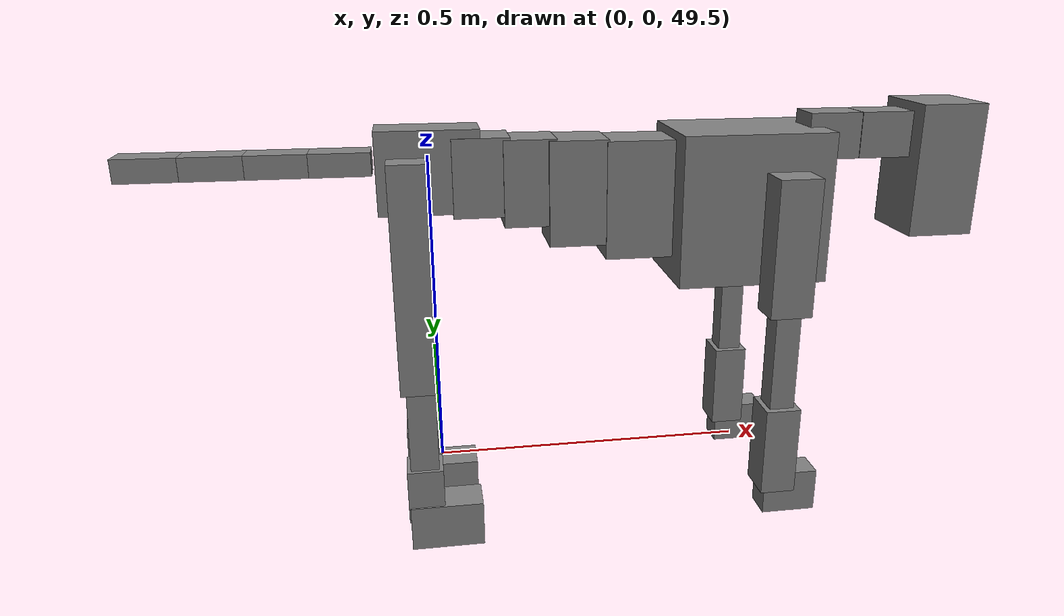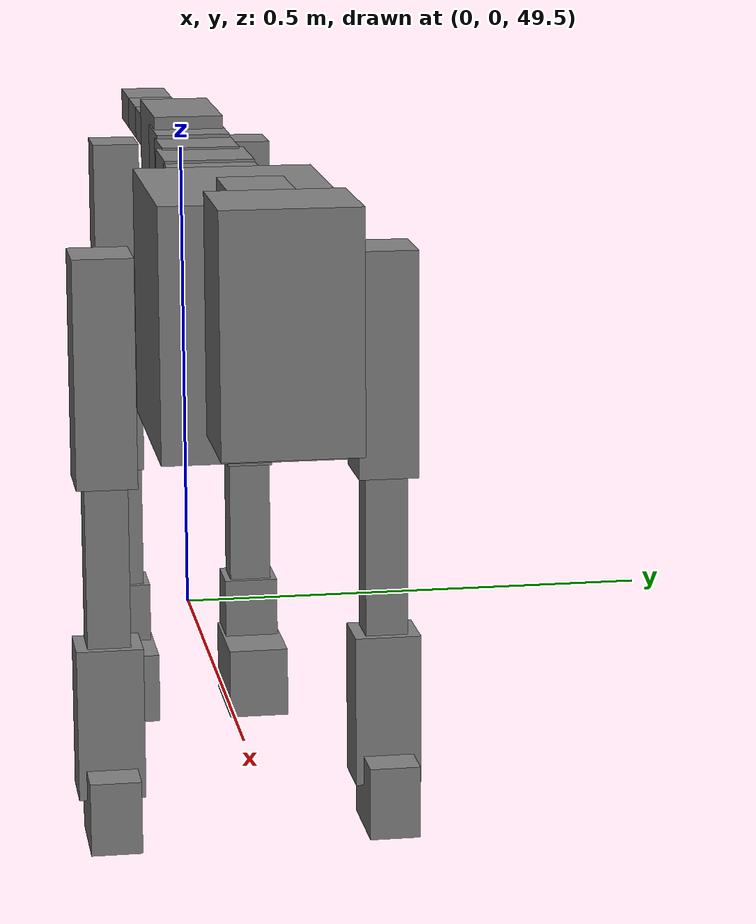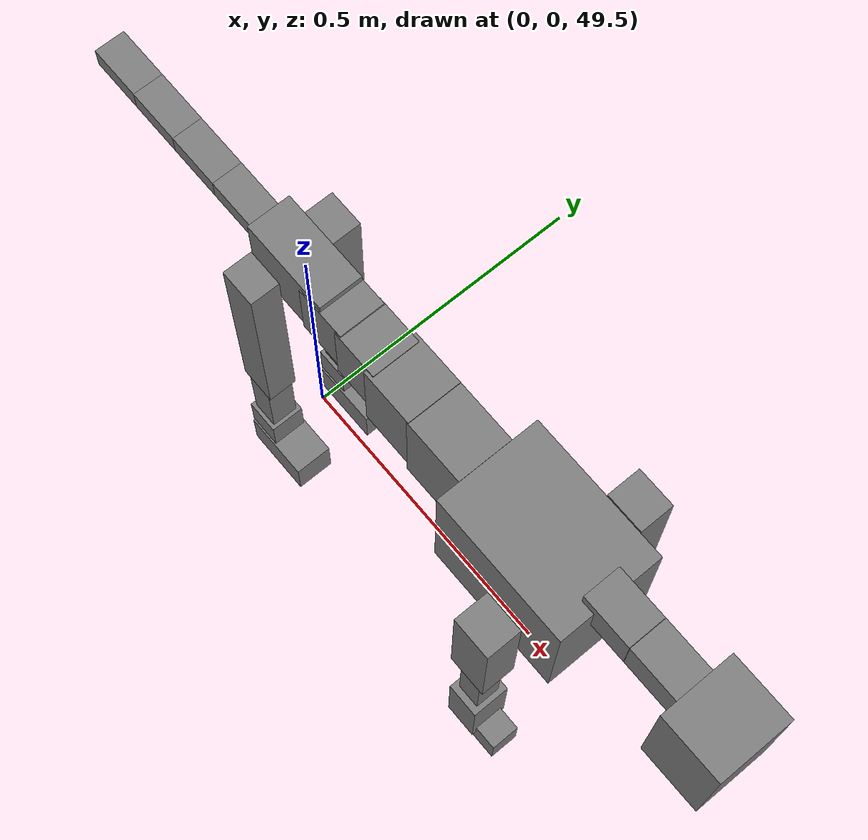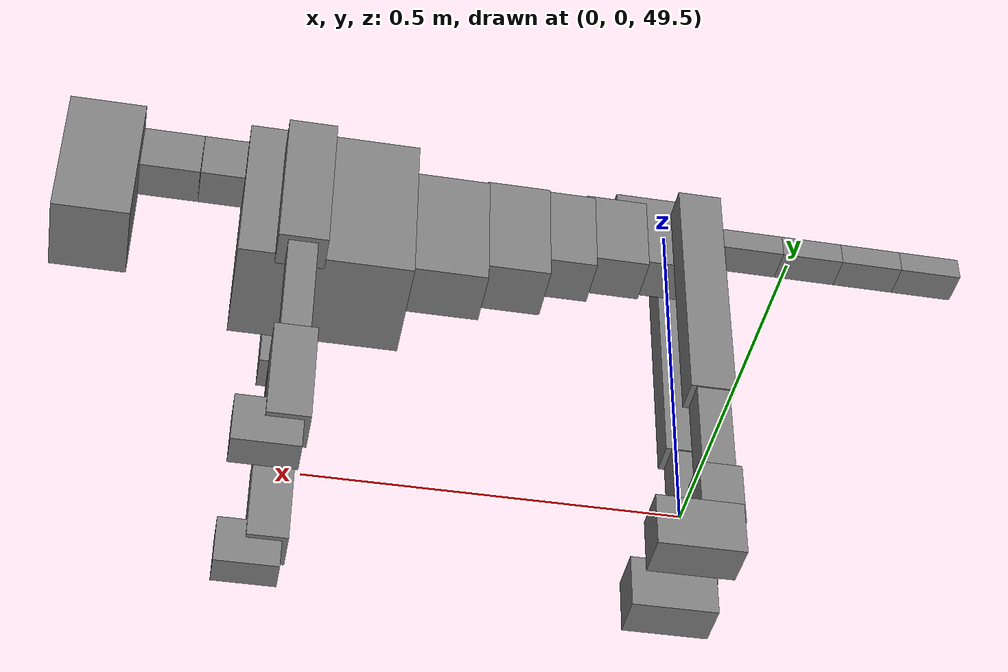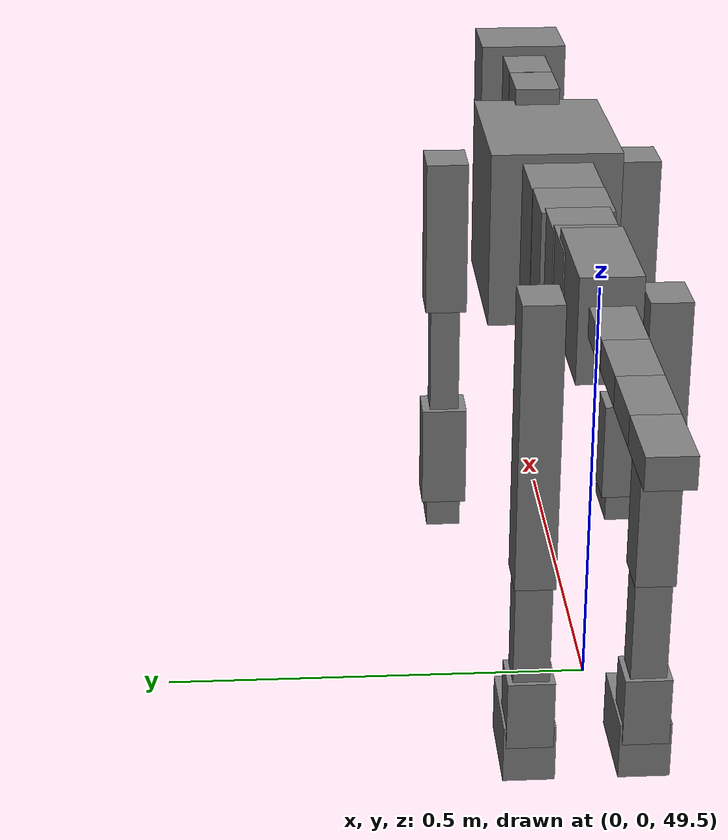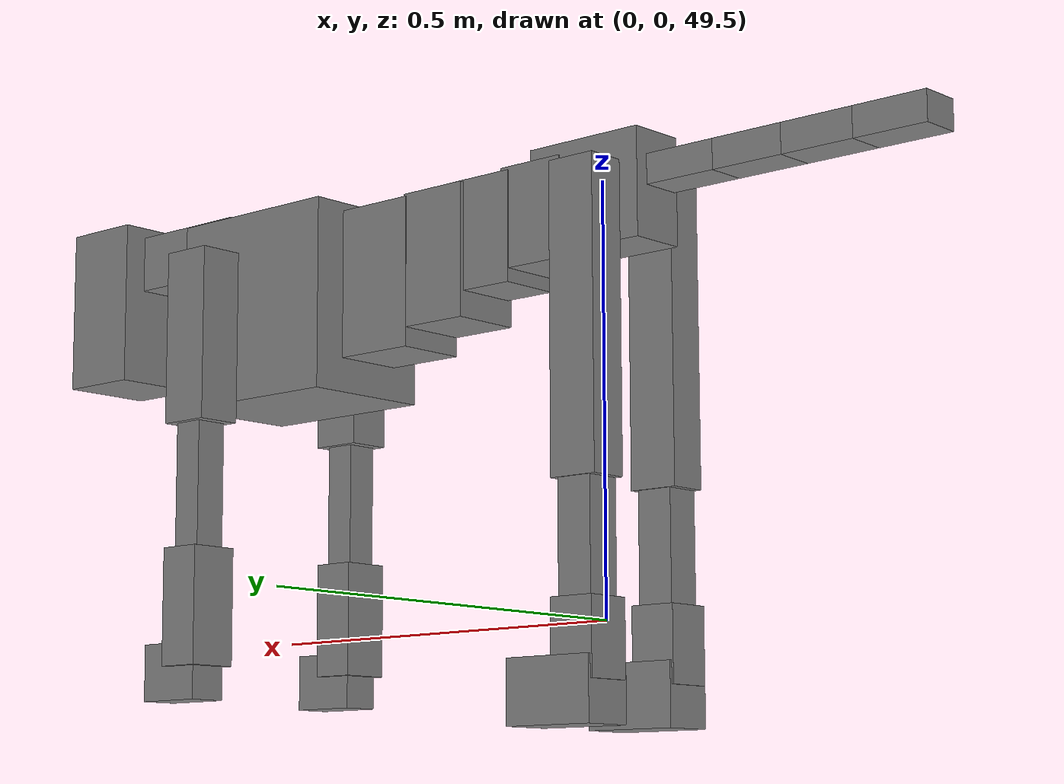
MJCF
<mujoco model="dog">

    <default>
        <joint armature="0.02" stiffness="1" damping="0.2" limited="true"/>
        <geom condim="3" friction="1 0.05 0.05" margin="0.01"/>
        <motor ctrllimited="true" ctrlrange="-1.0 1.0" forcelimited="true" gear="50"/>
    </default>

    <compiler inertiafromgeom="true" angle="radian"/>

    <option timestep="0.016" iterations="50" tolerance="1e-10" solver="Newton" jacobian="dense" cone="pyramidal"/>

    <size nconmax="20000" njmax="60000" nstack="5000000"/>
    <visual>
        <map force="0.1" zfar="30"/>
        <rgba haze="0.15 0.25 0.35 1"/>
        <quality shadowsize="2048"/>
        <global offwidth="800" offheight="800"/>
    </visual>

    <asset>
        <texture type="skybox" builtin="gradient" rgb1="0.3 0.5 0.7" rgb2="0 0 0" width="512" height="512"/>
        <texture name="texplane" type="2d" builtin="checker" rgb1=".2 .3 .4" rgb2=".1 0.15 0.2" width="512" height="512"
                 mark="cross" markrgb=".8 .8 .8"/>
        <texture name="texgeom" type="cube" builtin="flat" mark="cross" width="127" height="1278" rgb1="0.8 0.6 0.4"
                 rgb2="0.8 0.6 0.4" markrgb="1 1 1" random="0.01"/>

        <material name="matplane" reflectance="0.3" texture="texplane" texrepeat="1 1" texuniform="true"/>
        <material name="matgeom" texture="texgeom" texuniform="true" rgba="0.8 0.6 .4 1"/>
    </asset>

    <worldbody>
        <geom name="floor" pos="0 0 0" size="0 0 .25" type="plane" material="matplane" condim="3"/>

        <light directional="false" diffuse=".2 .2 .2" specular="0 0 0" pos="0 0 5" dir="0 0 -1" castshadow="false"/>
        <light mode="targetbodycom" target="torso" directional="false" diffuse=".8 .8 .8" specular="0.3 0.3 0.3"
               pos="0 0 4.0" dir="0 0 -1"/>

        <body name="root" pos="0 0 50">
            <freejoint name="root_1"/>
            <geom type="box" pos="0 0 -0.02" size="0.0774  0.0358  0.063" density="2030"/>

            <body name="spine1" pos="0.054 0 0">
                <joint name="spine1_y" axis="0 1 0" range="0 0.7" limited="true"/>
                <geom type="box" pos="0.02375 0 -0.03" size="0.04375  0.0375  0.05985" density="2030"/>

                <body name="spine2" pos="0.0612 0 0">
                    <joint name="spine2_y" axis="0 1 0" range="-0.15 0.15" limited="true"/>
                    <geom type="box" pos="0.03555  0  -0.04" size="0.04055  0.039  0.06615" density="2030"/>

                    <body name="spine3" pos="0.0730 0 0">
                        <joint name="spine3_y" axis="0 1 0" range="-0.15 0.15" limited="true"/>
                        <geom type="box" pos="0.03555  0  -0.057" size="0.04555  0.0445  0.081" density="2030"/>

                        <body name="spine4" pos="0.0780 0 0">
                            <joint name="spine4_y" axis="0 1 0" range="-0.15 0.15" limited="true"/>
                            <geom type="box" pos="0.05265  0  -0.07" size="0.05265  0.045  0.09135" density="2030"/>

                            <body name="torso" pos="0.1082 0 0">
                                <joint name="torso_y" axis="0 1 0" range="-0.15 0.15" limited="true"/>
                                <geom type="box" pos="0.11925  0  -0.085" size="0.11925  0.085  0.11745"
                                      density="2030"/>

                                <body name="neck1" pos="0.2160  0   0.0180">
                                    <joint name="neck1_y" axis="0 1 0" range="-1.2  -1" limited="true"/>
                                    <geom type="box" pos="0.0423  0  0" size="0.0423  0.03  0.036" density="2325"/>

                                    <body name="neck2" pos="0.0853  0  0">
                                        <joint name="neck2_y" axis="0 1 0" range="0.1  0" limited="true"/>
                                        <geom type="box" pos="0.0423  0  0" size="0.0423  0.03  0.036" density="2325"/>

                                        <body name="head" pos="0.0853  0  0">
                                            <joint name="head_y" axis="0 1 0" range="-0.3  -0.2" limited="true"/>
                                            <geom type="box" pos="0.0531  0  -0.055" size="0.0531  0.06  0.1044"
                                                  density="4030"/>

                                        </body>
                                    </body>
                                </body>

                                <body name="front_shoulder" pos="0.156  0   -0.0480">
                                    <joint name="front_shoulder_y" axis="0 1 0" range="-1 1.5" limited="true"/>
                                    <geom type="box" pos="0 0.13 -0.0800" size="0.0329  0.0281  0.1066" density="1158"/>
                                    <geom type="box" pos="0 -0.13 -0.0800" size="0.0329  0.0281  0.1066"
                                          density="1158"/>

                                    <body name="front_elbow" pos="0  0  -0.1600">
                                        <joint name="front_elbow_y" axis="0 1 0" range="-2 0" limited="true"/>
                                        <geom type="box" pos="0 0.13 -0.0965" size="0.0196  0.0201  0.0965"
                                              density="1081"/>
                                        <geom type="box" pos="0 -0.13 -0.0965" size="0.0196  0.0201  0.0965"
                                              density="1081"/>

                                        <body name="front_wrist" pos="0  0  -0.1931">
                                            <joint name="front_wrist_y" axis="0 1 0" range="-0.2 0" limited="true"/>
                                            <geom type="box" pos="0 0.13 -0.0584" size="0.0279  0.0310  0.0716"
                                                  density="1664"/>
                                            <geom type="box" pos="0 -0.13 -0.0584" size="0.0279  0.0310  0.0716"
                                                  density="1664"/>

                                            <body name="front_finger_end" pos="0  0  -0.1169">
                                                <joint name="front_finger_y" axis="0 1 0" range="-0.4 1"
                                                       limited="true"/>
                                                <geom type="box" pos="0.0237  0.13  -0.0194"
                                                      size="0.0435  0.0237  0.0344" density="1515"/>
                                                <geom type="box" pos="0.0237  -0.13  -0.0194"
                                                      size="0.0435  0.0237  0.0344" density="1515"/>

                                            </body>

                                        </body>
                                    </body>
                                </body>

                            </body>
                        </body>
                    </body>
                </body>
            </body>

            <body name="back_hip" pos="-0.03 0 -0.018">
                <joint name="back_hip_y" axis="0 1 0" range="-1.5 0.3" limited="true"/>
                <geom type="box" pos="0 0.07 -0.1548" size="0.0307  0.0241  0.1776" density="1154"/>
                <geom type="box" pos="0 -0.07 -0.1548" size="0.0307  0.0241  0.1776" density="1154"/>

                <body name="back_knee" pos="0  0  -0.3096">
                    <joint name="back_knee_y" axis="0 1 0" range="0 2.8" limited="true"/>
                    <geom type="box" pos="0 0.07 -0.0820" size="0.0224  0.0220  0.0975" density="1227"/>
                    <geom type="box" pos="0 -0.07 -0.0820" size="0.0224  0.0220  0.0975" density="1227"/>

                    <body name="back_ankle" pos="0  0  -0.1639">
                        <joint name="back_ankle_y" axis="0 1 0" range="-2.2 0" limited="true"/>
                        <geom type="box" pos="0 0.07 -0.0333" size="0.0285  0.0285  0.0445" density="1284"/>
                        <geom type="box" pos="0 -0.07 -0.0333" size="0.0285  0.0285  0.0445" density="1284"/>

                        <body name="back_toe_end" pos="0  0  -0.0665">
                            <joint name="back_toe_y" axis="0 1 0" range="-0.4 1" limited="true"/>
                            <geom type="box" pos="0.0315  0.07  -0.0220" size="0.0578  0.0315  0.0370" density="1515"/>
                            <geom type="box" pos="0.0315  -0.07  -0.0220" size="0.0578  0.0315  0.0370" density="1515"/>

                        </body>
                    </body>
                </body>
            </body>

            <body name="tail1" pos="-0.074 0 -0.006">
                <joint name="tail1_y" axis="0 1 0" range="-0.2 0.2" limited="true"/>
                <geom type="box" pos="-0.0536  0  0" size="0.045  0.025  0.0175" density="1587"/>

                <body name="tail2" pos="-0.09 0 0">
                    <joint name="tail2_y" axis="0 1 0" range="-0.2 0.2" limited="true"/>
                    <geom type="box" pos="-0.0536  0  0" size="0.045  0.025  0.0175" density="1587"/>

                    <body name="tail3" pos="-0.09 0 0">
                        <joint name="tail3_y" axis="0 1 0" range="-0.2 0.2" limited="true"/>
                        <geom type="box" pos="-0.0536  0  0" size="0.045  0.025  0.0175" density="1587"/>

                        <body name="tail4" pos="-0.09 0 0">
                            <joint name="tail4_y" axis="0 1 0" range="-0.2 0.2" limited="true"/>
                            <geom type="box" pos="-0.0536  0  0" size="0.045  0.025  0.0175" density="1587"/>

                        </body>
                    </body>
                </body>
            </body>
        </body>
    </worldbody>

    <actuator>
        <motor joint="spine1_y" forcerange="-150 150     "/>
        <motor joint="spine2_y" forcerange="-150 150     "/>
        <motor joint="spine3_y" forcerange="-150 150     "/>
        <motor joint="spine4_y" forcerange="-150 150     "/>
        <motor joint="torso_y" forcerange="-150 150     "/>
        <motor joint="neck1_y" forcerange="-100 100       "/>
        <motor joint="neck2_y" forcerange="-100 100       "/>
        <motor joint="head_y" forcerange="-150 150       "/>
        <motor joint="front_shoulder_y" forcerange="-108.50 178.90"/>
        <motor joint="front_elbow_y" forcerange="-113.06 132.81"/>
        <motor joint="front_wrist_y" forcerange="-98.99 148.98"/>
        <motor joint="front_finger_y" forcerange="-52.44 34.21"/>
        <motor joint="back_hip_y" forcerange="-251.82 269.10"/>
        <motor joint="back_knee_y" forcerange="-288.34 232.21"/>
        <motor joint="back_angle_y" forcerange="-143.22 213.29"/>
        <motor joint="back_toe_y" forcerange="-137.39 34.65"/>
        <motor joint="tail1_y" forcerange="-50 50     "/>
        <motor joint="tail2_y" forcerange="-50 50     "/>
        <motor joint="tail3_y" forcerange="-50 50     "/>
        <motor joint="tail4_y" forcerange="-50 50     "/>
    </actuator>
</mujoco>
